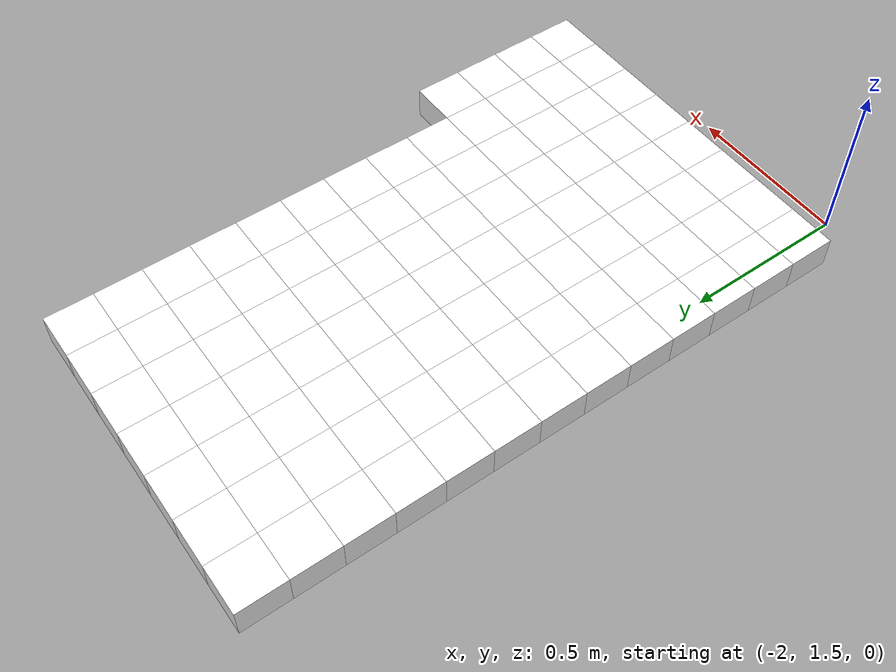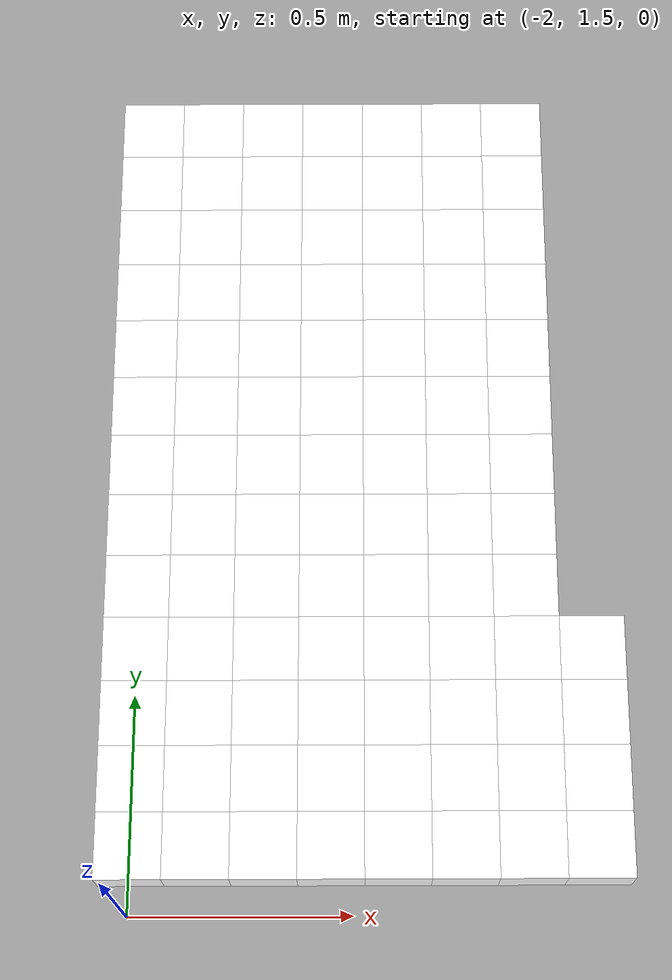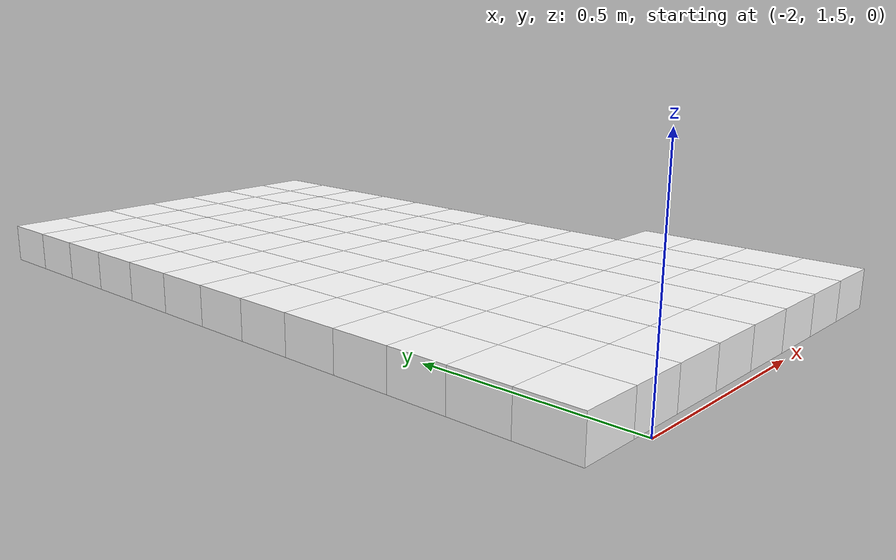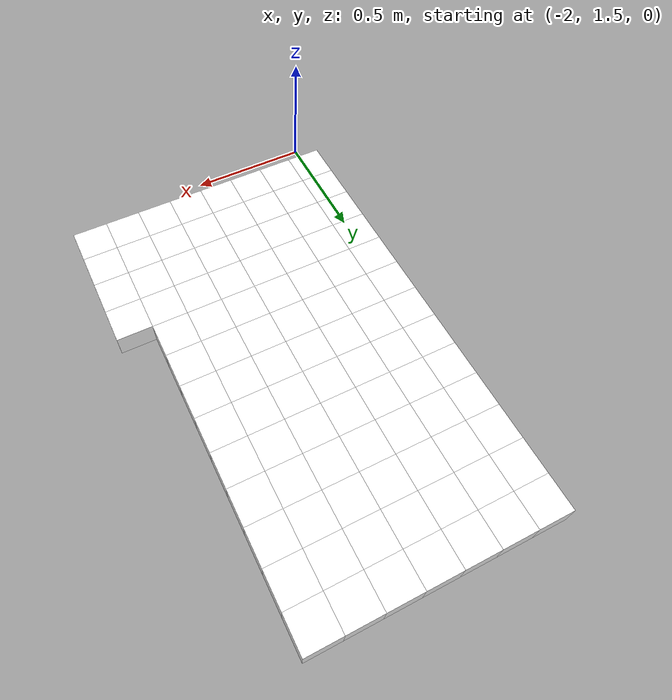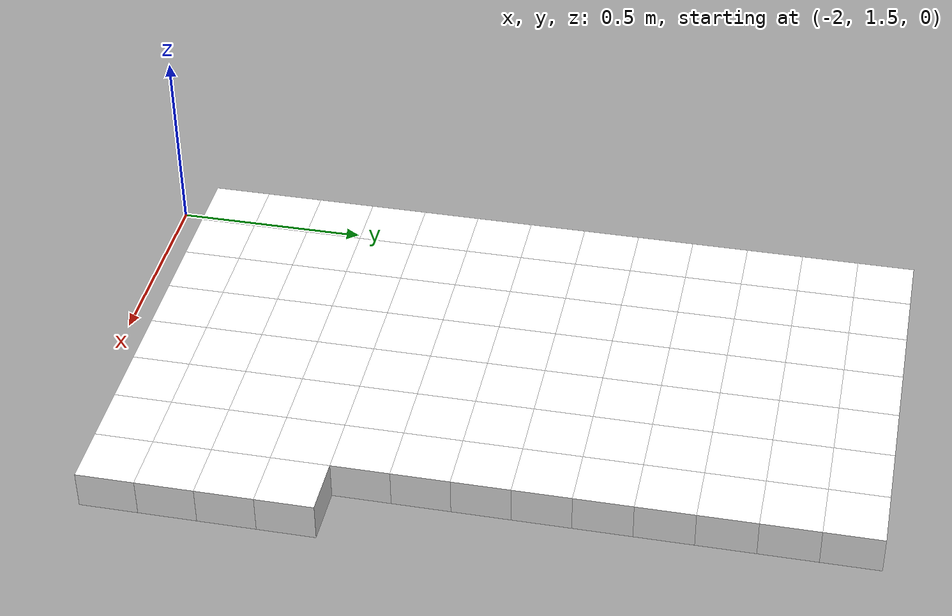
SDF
<sdf version="1.7">
 <world name="default">
  <include><uri>model://sun</uri></include>
  <model name="static_environment">
   <static>true</static>
   <link name="region_140">
    <pose>-2.0 1.65 0.0 0.0 0.0 0.0</pose>
    <collision name="region_140_collision">
     <geometry><box><size>0.15 0.15 0.1</size></box></geometry>
     <surface><friction><ode><mu>1.0</mu><mu2>1.0</mu2></ode></friction></surface>
    </collision>
    <visual name="region_140_visual">
     <geometry><box><size>0.15 0.15 0.1</size></box></geometry>
     <material><ambient>1.0 1.0 1.0 1.0</ambient><diffuse>1.0 1.0 1.0 1.0</diffuse></material>
    </visual>
   </link>
   <link name="region_141">
    <pose>-1.85 1.65 0.0 0.0 0.0 0.0</pose>
    <collision name="region_141_collision">
     <geometry><box><size>0.15 0.15 0.1</size></box></geometry>
     <surface><friction><ode><mu>1.0</mu><mu2>1.0</mu2></ode></friction></surface>
    </collision>
    <visual name="region_141_visual">
     <geometry><box><size>0.15 0.15 0.1</size></box></geometry>
     <material><ambient>1.0 1.0 1.0 1.0</ambient><diffuse>1.0 1.0 1.0 1.0</diffuse></material>
    </visual>
   </link>
   <link name="region_142">
    <pose>-1.7 1.65 0.0 0.0 0.0 0.0</pose>
    <collision name="region_142_collision">
     <geometry><box><size>0.15 0.15 0.1</size></box></geometry>
     <surface><friction><ode><mu>1.0</mu><mu2>1.0</mu2></ode></friction></surface>
    </collision>
    <visual name="region_142_visual">
     <geometry><box><size>0.15 0.15 0.1</size></box></geometry>
     <material><ambient>1.0 1.0 1.0 1.0</ambient><diffuse>1.0 1.0 1.0 1.0</diffuse></material>
    </visual>
   </link>
   <link name="region_143">
    <pose>-1.55 1.65 0.0 0.0 0.0 0.0</pose>
    <collision name="region_143_collision">
     <geometry><box><size>0.15 0.15 0.1</size></box></geometry>
     <surface><friction><ode><mu>1.0</mu><mu2>1.0</mu2></ode></friction></surface>
    </collision>
    <visual name="region_143_visual">
     <geometry><box><size>0.15 0.15 0.1</size></box></geometry>
     <material><ambient>1.0 1.0 1.0 1.0</ambient><diffuse>1.0 1.0 1.0 1.0</diffuse></material>
    </visual>
   </link>
   <link name="region_144">
    <pose>-1.4 1.65 0.0 0.0 0.0 0.0</pose>
    <collision name="region_144_collision">
     <geometry><box><size>0.15 0.15 0.1</size></box></geometry>
     <surface><friction><ode><mu>1.0</mu><mu2>1.0</mu2></ode></friction></surface>
    </collision>
    <visual name="region_144_visual">
     <geometry><box><size>0.15 0.15 0.1</size></box></geometry>
     <material><ambient>1.0 1.0 1.0 1.0</ambient><diffuse>1.0 1.0 1.0 1.0</diffuse></material>
    </visual>
   </link>
   <link name="region_145">
    <pose>-1.25 1.65 0.0 0.0 0.0 0.0</pose>
    <collision name="region_145_collision">
     <geometry><box><size>0.15 0.15 0.1</size></box></geometry>
     <surface><friction><ode><mu>1.0</mu><mu2>1.0</mu2></ode></friction></surface>
    </collision>
    <visual name="region_145_visual">
     <geometry><box><size>0.15 0.15 0.1</size></box></geometry>
     <material><ambient>1.0 1.0 1.0 1.0</ambient><diffuse>1.0 1.0 1.0 1.0</diffuse></material>
    </visual>
   </link>
   <link name="region_146">
    <pose>-1.1 1.65 0.0 0.0 0.0 0.0</pose>
    <collision name="region_146_collision">
     <geometry><box><size>0.15 0.15 0.1</size></box></geometry>
     <surface><friction><ode><mu>1.0</mu><mu2>1.0</mu2></ode></friction></surface>
    </collision>
    <visual name="region_146_visual">
     <geometry><box><size>0.15 0.15 0.1</size></box></geometry>
     <material><ambient>1.0 1.0 1.0 1.0</ambient><diffuse>1.0 1.0 1.0 1.0</diffuse></material>
    </visual>
   </link>
   <link name="region_147">
    <pose>-0.95 1.65 0.0 0.0 0.0 0.0</pose>
    <collision name="region_147_collision">
     <geometry><box><size>0.15 0.15 0.1</size></box></geometry>
     <surface><friction><ode><mu>1.0</mu><mu2>1.0</mu2></ode></friction></surface>
    </collision>
    <visual name="region_147_visual">
     <geometry><box><size>0.15 0.15 0.1</size></box></geometry>
     <material><ambient>1.0 1.0 1.0 1.0</ambient><diffuse>1.0 1.0 1.0 1.0</diffuse></material>
    </visual>
   </link>
   <link name="region_160">
    <pose>-2.0 1.7999999999999998 0.0 0.0 0.0 0.0</pose>
    <collision name="region_160_collision">
     <geometry><box><size>0.15 0.15 0.1</size></box></geometry>
     <surface><friction><ode><mu>1.0</mu><mu2>1.0</mu2></ode></friction></surface>
    </collision>
    <visual name="region_160_visual">
     <geometry><box><size>0.15 0.15 0.1</size></box></geometry>
     <material><ambient>1.0 1.0 1.0 1.0</ambient><diffuse>1.0 1.0 1.0 1.0</diffuse></material>
    </visual>
   </link>
   <link name="region_161">
    <pose>-1.85 1.7999999999999998 0.0 0.0 0.0 0.0</pose>
    <collision name="region_161_collision">
     <geometry><box><size>0.15 0.15 0.1</size></box></geometry>
     <surface><friction><ode><mu>1.0</mu><mu2>1.0</mu2></ode></friction></surface>
    </collision>
    <visual name="region_161_visual">
     <geometry><box><size>0.15 0.15 0.1</size></box></geometry>
     <material><ambient>1.0 1.0 1.0 1.0</ambient><diffuse>1.0 1.0 1.0 1.0</diffuse></material>
    </visual>
   </link>
   <link name="region_162">
    <pose>-1.7 1.7999999999999998 0.0 0.0 0.0 0.0</pose>
    <collision name="region_162_collision">
     <geometry><box><size>0.15 0.15 0.1</size></box></geometry>
     <surface><friction><ode><mu>1.0</mu><mu2>1.0</mu2></ode></friction></surface>
    </collision>
    <visual name="region_162_visual">
     <geometry><box><size>0.15 0.15 0.1</size></box></geometry>
     <material><ambient>1.0 1.0 1.0 1.0</ambient><diffuse>1.0 1.0 1.0 1.0</diffuse></material>
    </visual>
   </link>
   <link name="region_163">
    <pose>-1.55 1.7999999999999998 0.0 0.0 0.0 0.0</pose>
    <collision name="region_163_collision">
     <geometry><box><size>0.15 0.15 0.1</size></box></geometry>
     <surface><friction><ode><mu>1.0</mu><mu2>1.0</mu2></ode></friction></surface>
    </collision>
    <visual name="region_163_visual">
     <geometry><box><size>0.15 0.15 0.1</size></box></geometry>
     <material><ambient>1.0 1.0 1.0 1.0</ambient><diffuse>1.0 1.0 1.0 1.0</diffuse></material>
    </visual>
   </link>
   <link name="region_164">
    <pose>-1.4 1.7999999999999998 0.0 0.0 0.0 0.0</pose>
    <collision name="region_164_collision">
     <geometry><box><size>0.15 0.15 0.1</size></box></geometry>
     <surface><friction><ode><mu>1.0</mu><mu2>1.0</mu2></ode></friction></surface>
    </collision>
    <visual name="region_164_visual">
     <geometry><box><size>0.15 0.15 0.1</size></box></geometry>
     <material><ambient>1.0 1.0 1.0 1.0</ambient><diffuse>1.0 1.0 1.0 1.0</diffuse></material>
    </visual>
   </link>
   <link name="region_165">
    <pose>-1.25 1.7999999999999998 0.0 0.0 0.0 0.0</pose>
    <collision name="region_165_collision">
     <geometry><box><size>0.15 0.15 0.1</size></box></geometry>
     <surface><friction><ode><mu>1.0</mu><mu2>1.0</mu2></ode></friction></surface>
    </collision>
    <visual name="region_165_visual">
     <geometry><box><size>0.15 0.15 0.1</size></box></geometry>
     <material><ambient>1.0 1.0 1.0 1.0</ambient><diffuse>1.0 1.0 1.0 1.0</diffuse></material>
    </visual>
   </link>
   <link name="region_166">
    <pose>-1.1 1.7999999999999998 0.0 0.0 0.0 0.0</pose>
    <collision name="region_166_collision">
     <geometry><box><size>0.15 0.15 0.1</size></box></geometry>
     <surface><friction><ode><mu>1.0</mu><mu2>1.0</mu2></ode></friction></surface>
    </collision>
    <visual name="region_166_visual">
     <geometry><box><size>0.15 0.15 0.1</size></box></geometry>
     <material><ambient>1.0 1.0 1.0 1.0</ambient><diffuse>1.0 1.0 1.0 1.0</diffuse></material>
    </visual>
   </link>
   <link name="region_167">
    <pose>-0.95 1.7999999999999998 0.0 0.0 0.0 0.0</pose>
    <collision name="region_167_collision">
     <geometry><box><size>0.15 0.15 0.1</size></box></geometry>
     <surface><friction><ode><mu>1.0</mu><mu2>1.0</mu2></ode></friction></surface>
    </collision>
    <visual name="region_167_visual">
     <geometry><box><size>0.15 0.15 0.1</size></box></geometry>
     <material><ambient>1.0 1.0 1.0 1.0</ambient><diffuse>1.0 1.0 1.0 1.0</diffuse></material>
    </visual>
   </link>
   <link name="region_180">
    <pose>-2.0 1.9499999999999997 0.0 0.0 0.0 0.0</pose>
    <collision name="region_180_collision">
     <geometry><box><size>0.15 0.15 0.1</size></box></geometry>
     <surface><friction><ode><mu>1.0</mu><mu2>1.0</mu2></ode></friction></surface>
    </collision>
    <visual name="region_180_visual">
     <geometry><box><size>0.15 0.15 0.1</size></box></geometry>
     <material><ambient>1.0 1.0 1.0 1.0</ambient><diffuse>1.0 1.0 1.0 1.0</diffuse></material>
    </visual>
   </link>
   <link name="region_181">
    <pose>-1.85 1.9499999999999997 0.0 0.0 0.0 0.0</pose>
    <collision name="region_181_collision">
     <geometry><box><size>0.15 0.15 0.1</size></box></geometry>
     <surface><friction><ode><mu>1.0</mu><mu2>1.0</mu2></ode></friction></surface>
    </collision>
    <visual name="region_181_visual">
     <geometry><box><size>0.15 0.15 0.1</size></box></geometry>
     <material><ambient>1.0 1.0 1.0 1.0</ambient><diffuse>1.0 1.0 1.0 1.0</diffuse></material>
    </visual>
   </link>
   <link name="region_182">
    <pose>-1.7 1.9499999999999997 0.0 0.0 0.0 0.0</pose>
    <collision name="region_182_collision">
     <geometry><box><size>0.15 0.15 0.1</size></box></geometry>
     <surface><friction><ode><mu>1.0</mu><mu2>1.0</mu2></ode></friction></surface>
    </collision>
    <visual name="region_182_visual">
     <geometry><box><size>0.15 0.15 0.1</size></box></geometry>
     <material><ambient>1.0 1.0 1.0 1.0</ambient><diffuse>1.0 1.0 1.0 1.0</diffuse></material>
    </visual>
   </link>
   <link name="region_183">
    <pose>-1.55 1.9499999999999997 0.0 0.0 0.0 0.0</pose>
    <collision name="region_183_collision">
     <geometry><box><size>0.15 0.15 0.1</size></box></geometry>
     <surface><friction><ode><mu>1.0</mu><mu2>1.0</mu2></ode></friction></surface>
    </collision>
    <visual name="region_183_visual">
     <geometry><box><size>0.15 0.15 0.1</size></box></geometry>
     <material><ambient>1.0 1.0 1.0 1.0</ambient><diffuse>1.0 1.0 1.0 1.0</diffuse></material>
    </visual>
   </link>
   <link name="region_184">
    <pose>-1.4 1.9499999999999997 0.0 0.0 0.0 0.0</pose>
    <collision name="region_184_collision">
     <geometry><box><size>0.15 0.15 0.1</size></box></geometry>
     <surface><friction><ode><mu>1.0</mu><mu2>1.0</mu2></ode></friction></surface>
    </collision>
    <visual name="region_184_visual">
     <geometry><box><size>0.15 0.15 0.1</size></box></geometry>
     <material><ambient>1.0 1.0 1.0 1.0</ambient><diffuse>1.0 1.0 1.0 1.0</diffuse></material>
    </visual>
   </link>
   <link name="region_185">
    <pose>-1.25 1.9499999999999997 0.0 0.0 0.0 0.0</pose>
    <collision name="region_185_collision">
     <geometry><box><size>0.15 0.15 0.1</size></box></geometry>
     <surface><friction><ode><mu>1.0</mu><mu2>1.0</mu2></ode></friction></surface>
    </collision>
    <visual name="region_185_visual">
     <geometry><box><size>0.15 0.15 0.1</size></box></geometry>
     <material><ambient>1.0 1.0 1.0 1.0</ambient><diffuse>1.0 1.0 1.0 1.0</diffuse></material>
    </visual>
   </link>
   <link name="region_186">
    <pose>-1.1 1.9499999999999997 0.0 0.0 0.0 0.0</pose>
    <collision name="region_186_collision">
     <geometry><box><size>0.15 0.15 0.1</size></box></geometry>
     <surface><friction><ode><mu>1.0</mu><mu2>1.0</mu2></ode></friction></surface>
    </collision>
    <visual name="region_186_visual">
     <geometry><box><size>0.15 0.15 0.1</size></box></geometry>
     <material><ambient>1.0 1.0 1.0 1.0</ambient><diffuse>1.0 1.0 1.0 1.0</diffuse></material>
    </visual>
   </link>
   <link name="region_187">
    <pose>-0.95 1.9499999999999997 0.0 0.0 0.0 0.0</pose>
    <collision name="region_187_collision">
     <geometry><box><size>0.15 0.15 0.1</size></box></geometry>
     <surface><friction><ode><mu>1.0</mu><mu2>1.0</mu2></ode></friction></surface>
    </collision>
    <visual name="region_187_visual">
     <geometry><box><size>0.15 0.15 0.1</size></box></geometry>
     <material><ambient>1.0 1.0 1.0 1.0</ambient><diffuse>1.0 1.0 1.0 1.0</diffuse></material>
    </visual>
   </link>
   <link name="region_200">
    <pose>-2.0 2.0999999999999996 0.0 0.0 0.0 0.0</pose>
    <collision name="region_200_collision">
     <geometry><box><size>0.15 0.15 0.1</size></box></geometry>
     <surface><friction><ode><mu>1.0</mu><mu2>1.0</mu2></ode></friction></surface>
    </collision>
    <visual name="region_200_visual">
     <geometry><box><size>0.15 0.15 0.1</size></box></geometry>
     <material><ambient>1.0 1.0 1.0 1.0</ambient><diffuse>1.0 1.0 1.0 1.0</diffuse></material>
    </visual>
   </link>
   <link name="region_201">
    <pose>-1.85 2.0999999999999996 0.0 0.0 0.0 0.0</pose>
    <collision name="region_201_collision">
     <geometry><box><size>0.15 0.15 0.1</size></box></geometry>
     <surface><friction><ode><mu>1.0</mu><mu2>1.0</mu2></ode></friction></surface>
    </collision>
    <visual name="region_201_visual">
     <geometry><box><size>0.15 0.15 0.1</size></box></geometry>
     <material><ambient>1.0 1.0 1.0 1.0</ambient><diffuse>1.0 1.0 1.0 1.0</diffuse></material>
    </visual>
   </link>
   <link name="region_202">
    <pose>-1.7 2.0999999999999996 0.0 0.0 0.0 0.0</pose>
    <collision name="region_202_collision">
     <geometry><box><size>0.15 0.15 0.1</size></box></geometry>
     <surface><friction><ode><mu>1.0</mu><mu2>1.0</mu2></ode></friction></surface>
    </collision>
    <visual name="region_202_visual">
     <geometry><box><size>0.15 0.15 0.1</size></box></geometry>
     <material><ambient>1.0 1.0 1.0 1.0</ambient><diffuse>1.0 1.0 1.0 1.0</diffuse></material>
    </visual>
   </link>
   <link name="region_203">
    <pose>-1.55 2.0999999999999996 0.0 0.0 0.0 0.0</pose>
    <collision name="region_203_collision">
     <geometry><box><size>0.15 0.15 0.1</size></box></geometry>
     <surface><friction><ode><mu>1.0</mu><mu2>1.0</mu2></ode></friction></surface>
    </collision>
    <visual name="region_203_visual">
     <geometry><box><size>0.15 0.15 0.1</size></box></geometry>
     <material><ambient>1.0 1.0 1.0 1.0</ambient><diffuse>1.0 1.0 1.0 1.0</diffuse></material>
    </visual>
   </link>
   <link name="region_204">
    <pose>-1.4 2.0999999999999996 0.0 0.0 0.0 0.0</pose>
    <collision name="region_204_collision">
     <geometry><box><size>0.15 0.15 0.1</size></box></geometry>
     <surface><friction><ode><mu>1.0</mu><mu2>1.0</mu2></ode></friction></surface>
    </collision>
    <visual name="region_204_visual">
     <geometry><box><size>0.15 0.15 0.1</size></box></geometry>
     <material><ambient>1.0 1.0 1.0 1.0</ambient><diffuse>1.0 1.0 1.0 1.0</diffuse></material>
    </visual>
   </link>
   <link name="region_205">
    <pose>-1.25 2.0999999999999996 0.0 0.0 0.0 0.0</pose>
    <collision name="region_205_collision">
     <geometry><box><size>0.15 0.15 0.1</size></box></geometry>
     <surface><friction><ode><mu>1.0</mu><mu2>1.0</mu2></ode></friction></surface>
    </collision>
    <visual name="region_205_visual">
     <geometry><box><size>0.15 0.15 0.1</size></box></geometry>
     <material><ambient>1.0 1.0 1.0 1.0</ambient><diffuse>1.0 1.0 1.0 1.0</diffuse></material>
    </visual>
   </link>
   <link name="region_206">
    <pose>-1.1 2.0999999999999996 0.0 0.0 0.0 0.0</pose>
    <collision name="region_206_collision">
     <geometry><box><size>0.15 0.15 0.1</size></box></geometry>
     <surface><friction><ode><mu>1.0</mu><mu2>1.0</mu2></ode></friction></surface>
    </collision>
    <visual name="region_206_visual">
     <geometry><box><size>0.15 0.15 0.1</size></box></geometry>
     <material><ambient>1.0 1.0 1.0 1.0</ambient><diffuse>1.0 1.0 1.0 1.0</diffuse></material>
    </visual>
   </link>
   <link name="region_207">
    <pose>-0.95 2.0999999999999996 0.0 0.0 0.0 0.0</pose>
    <collision name="region_207_collision">
     <geometry><box><size>0.15 0.15 0.1</size></box></geometry>
     <surface><friction><ode><mu>1.0</mu><mu2>1.0</mu2></ode></friction></surface>
    </collision>
    <visual name="region_207_visual">
     <geometry><box><size>0.15 0.15 0.1</size></box></geometry>
     <material><ambient>1.0 1.0 1.0 1.0</ambient><diffuse>1.0 1.0 1.0 1.0</diffuse></material>
    </visual>
   </link>
   <link name="region_220">
    <pose>-2.0 2.2499999999999996 0.0 0.0 0.0 0.0</pose>
    <collision name="region_220_collision">
     <geometry><box><size>0.15 0.15 0.1</size></box></geometry>
     <surface><friction><ode><mu>1.0</mu><mu2>1.0</mu2></ode></friction></surface>
    </collision>
    <visual name="region_220_visual">
     <geometry><box><size>0.15 0.15 0.1</size></box></geometry>
     <material><ambient>1.0 1.0 1.0 1.0</ambient><diffuse>1.0 1.0 1.0 1.0</diffuse></material>
    </visual>
   </link>
   <link name="region_221">
    <pose>-1.85 2.2499999999999996 0.0 0.0 0.0 0.0</pose>
    <collision name="region_221_collision">
     <geometry><box><size>0.15 0.15 0.1</size></box></geometry>
     <surface><friction><ode><mu>1.0</mu><mu2>1.0</mu2></ode></friction></surface>
    </collision>
    <visual name="region_221_visual">
     <geometry><box><size>0.15 0.15 0.1</size></box></geometry>
     <material><ambient>1.0 1.0 1.0 1.0</ambient><diffuse>1.0 1.0 1.0 1.0</diffuse></material>
    </visual>
   </link>
   <link name="region_222">
    <pose>-1.7 2.2499999999999996 0.0 0.0 0.0 0.0</pose>
    <collision name="region_222_collision">
     <geometry><box><size>0.15 0.15 0.1</size></box></geometry>
     <surface><friction><ode><mu>1.0</mu><mu2>1.0</mu2></ode></friction></surface>
    </collision>
    <visual name="region_222_visual">
     <geometry><box><size>0.15 0.15 0.1</size></box></geometry>
     <material><ambient>1.0 1.0 1.0 1.0</ambient><diffuse>1.0 1.0 1.0 1.0</diffuse></material>
    </visual>
   </link>
   <link name="region_223">
    <pose>-1.55 2.2499999999999996 0.0 0.0 0.0 0.0</pose>
    <collision name="region_223_collision">
     <geometry><box><size>0.15 0.15 0.1</size></box></geometry>
     <surface><friction><ode><mu>1.0</mu><mu2>1.0</mu2></ode></friction></surface>
    </collision>
    <visual name="region_223_visual">
     <geometry><box><size>0.15 0.15 0.1</size></box></geometry>
     <material><ambient>1.0 1.0 1.0 1.0</ambient><diffuse>1.0 1.0 1.0 1.0</diffuse></material>
    </visual>
   </link>
   <link name="region_224">
    <pose>-1.4 2.2499999999999996 0.0 0.0 0.0 0.0</pose>
    <collision name="region_224_collision">
     <geometry><box><size>0.15 0.15 0.1</size></box></geometry>
     <surface><friction><ode><mu>1.0</mu><mu2>1.0</mu2></ode></friction></surface>
    </collision>
    <visual name="region_224_visual">
     <geometry><box><size>0.15 0.15 0.1</size></box></geometry>
     <material><ambient>1.0 1.0 1.0 1.0</ambient><diffuse>1.0 1.0 1.0 1.0</diffuse></material>
    </visual>
   </link>
   <link name="region_225">
    <pose>-1.25 2.2499999999999996 0.0 0.0 0.0 0.0</pose>
    <collision name="region_225_collision">
     <geometry><box><size>0.15 0.15 0.1</size></box></geometry>
     <surface><friction><ode><mu>1.0</mu><mu2>1.0</mu2></ode></friction></surface>
    </collision>
    <visual name="region_225_visual">
     <geometry><box><size>0.15 0.15 0.1</size></box></geometry>
     <material><ambient>1.0 1.0 1.0 1.0</ambient><diffuse>1.0 1.0 1.0 1.0</diffuse></material>
    </visual>
   </link>
   <link name="region_226">
    <pose>-1.1 2.2499999999999996 0.0 0.0 0.0 0.0</pose>
    <collision name="region_226_collision">
     <geometry><box><size>0.15 0.15 0.1</size></box></geometry>
     <surface><friction><ode><mu>1.0</mu><mu2>1.0</mu2></ode></friction></surface>
    </collision>
    <visual name="region_226_visual">
     <geometry><box><size>0.15 0.15 0.1</size></box></geometry>
     <material><ambient>1.0 1.0 1.0 1.0</ambient><diffuse>1.0 1.0 1.0 1.0</diffuse></material>
    </visual>
   </link>
   <link name="region_240">
    <pose>-2.0 2.3999999999999995 0.0 0.0 0.0 0.0</pose>
    <collision name="region_240_collision">
     <geometry><box><size>0.15 0.15 0.1</size></box></geometry>
     <surface><friction><ode><mu>1.0</mu><mu2>1.0</mu2></ode></friction></surface>
    </collision>
    <visual name="region_240_visual">
     <geometry><box><size>0.15 0.15 0.1</size></box></geometry>
     <material><ambient>1.0 1.0 1.0 1.0</ambient><diffuse>1.0 1.0 1.0 1.0</diffuse></material>
    </visual>
   </link>
   <link name="region_241">
    <pose>-1.85 2.3999999999999995 0.0 0.0 0.0 0.0</pose>
    <collision name="region_241_collision">
     <geometry><box><size>0.15 0.15 0.1</size></box></geometry>
     <surface><friction><ode><mu>1.0</mu><mu2>1.0</mu2></ode></friction></surface>
    </collision>
    <visual name="region_241_visual">
     <geometry><box><size>0.15 0.15 0.1</size></box></geometry>
     <material><ambient>1.0 1.0 1.0 1.0</ambient><diffuse>1.0 1.0 1.0 1.0</diffuse></material>
    </visual>
   </link>
   <link name="region_242">
    <pose>-1.7 2.3999999999999995 0.0 0.0 0.0 0.0</pose>
    <collision name="region_242_collision">
     <geometry><box><size>0.15 0.15 0.1</size></box></geometry>
     <surface><friction><ode><mu>1.0</mu><mu2>1.0</mu2></ode></friction></surface>
    </collision>
    <visual name="region_242_visual">
     <geometry><box><size>0.15 0.15 0.1</size></box></geometry>
     <material><ambient>1.0 1.0 1.0 1.0</ambient><diffuse>1.0 1.0 1.0 1.0</diffuse></material>
    </visual>
   </link>
   <link name="region_243">
    <pose>-1.55 2.3999999999999995 0.0 0.0 0.0 0.0</pose>
    <collision name="region_243_collision">
     <geometry><box><size>0.15 0.15 0.1</size></box></geometry>
     <surface><friction><ode><mu>1.0</mu><mu2>1.0</mu2></ode></friction></surface>
    </collision>
    <visual name="region_243_visual">
     <geometry><box><size>0.15 0.15 0.1</size></box></geometry>
     <material><ambient>1.0 1.0 1.0 1.0</ambient><diffuse>1.0 1.0 1.0 1.0</diffuse></material>
    </visual>
   </link>
   <link name="region_244">
    <pose>-1.4 2.3999999999999995 0.0 0.0 0.0 0.0</pose>
    <collision name="region_244_collision">
     <geometry><box><size>0.15 0.15 0.1</size></box></geometry>
     <surface><friction><ode><mu>1.0</mu><mu2>1.0</mu2></ode></friction></surface>
    </collision>
    <visual name="region_244_visual">
     <geometry><box><size>0.15 0.15 0.1</size></box></geometry>
     <material><ambient>1.0 1.0 1.0 1.0</ambient><diffuse>1.0 1.0 1.0 1.0</diffuse></material>
    </visual>
   </link>
   <link name="region_245">
    <pose>-1.25 2.3999999999999995 0.0 0.0 0.0 0.0</pose>
    <collision name="region_245_collision">
     <geometry><box><size>0.15 0.15 0.1</size></box></geometry>
     <surface><friction><ode><mu>1.0</mu><mu2>1.0</mu2></ode></friction></surface>
    </collision>
    <visual name="region_245_visual">
     <geometry><box><size>0.15 0.15 0.1</size></box></geometry>
     <material><ambient>1.0 1.0 1.0 1.0</ambient><diffuse>1.0 1.0 1.0 1.0</diffuse></material>
    </visual>
   </link>
   <link name="region_246">
    <pose>-1.1 2.3999999999999995 0.0 0.0 0.0 0.0</pose>
    <collision name="region_246_collision">
     <geometry><box><size>0.15 0.15 0.1</size></box></geometry>
     <surface><friction><ode><mu>1.0</mu><mu2>1.0</mu2></ode></friction></surface>
    </collision>
    <visual name="region_246_visual">
     <geometry><box><size>0.15 0.15 0.1</size></box></geometry>
     <material><ambient>1.0 1.0 1.0 1.0</ambient><diffuse>1.0 1.0 1.0 1.0</diffuse></material>
    </visual>
   </link>
   <link name="region_260">
    <pose>-2.0 2.5499999999999994 0.0 0.0 0.0 0.0</pose>
    <collision name="region_260_collision">
     <geometry><box><size>0.15 0.15 0.1</size></box></geometry>
     <surface><friction><ode><mu>1.0</mu><mu2>1.0</mu2></ode></friction></surface>
    </collision>
    <visual name="region_260_visual">
     <geometry><box><size>0.15 0.15 0.1</size></box></geometry>
     <material><ambient>1.0 1.0 1.0 1.0</ambient><diffuse>1.0 1.0 1.0 1.0</diffuse></material>
    </visual>
   </link>
   <link name="region_261">
    <pose>-1.85 2.5499999999999994 0.0 0.0 0.0 0.0</pose>
    <collision name="region_261_collision">
     <geometry><box><size>0.15 0.15 0.1</size></box></geometry>
     <surface><friction><ode><mu>1.0</mu><mu2>1.0</mu2></ode></friction></surface>
    </collision>
    <visual name="region_261_visual">
     <geometry><box><size>0.15 0.15 0.1</size></box></geometry>
     <material><ambient>1.0 1.0 1.0 1.0</ambient><diffuse>1.0 1.0 1.0 1.0</diffuse></material>
    </visual>
   </link>
   <link name="region_262">
    <pose>-1.7 2.5499999999999994 0.0 0.0 0.0 0.0</pose>
    <collision name="region_262_collision">
     <geometry><box><size>0.15 0.15 0.1</size></box></geometry>
     <surface><friction><ode><mu>1.0</mu><mu2>1.0</mu2></ode></friction></surface>
    </collision>
    <visual name="region_262_visual">
     <geometry><box><size>0.15 0.15 0.1</size></box></geometry>
     <material><ambient>1.0 1.0 1.0 1.0</ambient><diffuse>1.0 1.0 1.0 1.0</diffuse></material>
    </visual>
   </link>
   <link name="region_263">
    <pose>-1.55 2.5499999999999994 0.0 0.0 0.0 0.0</pose>
    <collision name="region_263_collision">
     <geometry><box><size>0.15 0.15 0.1</size></box></geometry>
     <surface><friction><ode><mu>1.0</mu><mu2>1.0</mu2></ode></friction></surface>
    </collision>
    <visual name="region_263_visual">
     <geometry><box><size>0.15 0.15 0.1</size></box></geometry>
     <material><ambient>1.0 1.0 1.0 1.0</ambient><diffuse>1.0 1.0 1.0 1.0</diffuse></material>
    </visual>
   </link>
   <link name="region_264">
    <pose>-1.4 2.5499999999999994 0.0 0.0 0.0 0.0</pose>
    <collision name="region_264_collision">
     <geometry><box><size>0.15 0.15 0.1</size></box></geometry>
     <surface><friction><ode><mu>1.0</mu><mu2>1.0</mu2></ode></friction></surface>
    </collision>
    <visual name="region_264_visual">
     <geometry><box><size>0.15 0.15 0.1</size></box></geometry>
     <material><ambient>1.0 1.0 1.0 1.0</ambient><diffuse>1.0 1.0 1.0 1.0</diffuse></material>
    </visual>
   </link>
   <link name="region_265">
    <pose>-1.25 2.5499999999999994 0.0 0.0 0.0 0.0</pose>
    <collision name="region_265_collision">
     <geometry><box><size>0.15 0.15 0.1</size></box></geometry>
     <surface><friction><ode><mu>1.0</mu><mu2>1.0</mu2></ode></friction></surface>
    </collision>
    <visual name="region_265_visual">
     <geometry><box><size>0.15 0.15 0.1</size></box></geometry>
     <material><ambient>1.0 1.0 1.0 1.0</ambient><diffuse>1.0 1.0 1.0 1.0</diffuse></material>
    </visual>
   </link>
   <link name="region_266">
    <pose>-1.1 2.5499999999999994 0.0 0.0 0.0 0.0</pose>
    <collision name="region_266_collision">
     <geometry><box><size>0.15 0.15 0.1</size></box></geometry>
     <surface><friction><ode><mu>1.0</mu><mu2>1.0</mu2></ode></friction></surface>
    </collision>
    <visual name="region_266_visual">
     <geometry><box><size>0.15 0.15 0.1</size></box></geometry>
     <material><ambient>1.0 1.0 1.0 1.0</ambient><diffuse>1.0 1.0 1.0 1.0</diffuse></material>
    </visual>
   </link>
   <link name="region_280">
    <pose>-2.0 2.6999999999999997 0.0 0.0 0.0 0.0</pose>
    <collision name="region_280_collision">
     <geometry><box><size>0.15 0.15 0.1</size></box></geometry>
     <surface><friction><ode><mu>1.0</mu><mu2>1.0</mu2></ode></friction></surface>
    </collision>
    <visual name="region_280_visual">
     <geometry><box><size>0.15 0.15 0.1</size></box></geometry>
     <material><ambient>1.0 1.0 1.0 1.0</ambient><diffuse>1.0 1.0 1.0 1.0</diffuse></material>
    </visual>
   </link>
   <link name="region_281">
    <pose>-1.85 2.6999999999999997 0.0 0.0 0.0 0.0</pose>
    <collision name="region_281_collision">
     <geometry><box><size>0.15 0.15 0.1</size></box></geometry>
     <surface><friction><ode><mu>1.0</mu><mu2>1.0</mu2></ode></friction></surface>
    </collision>
    <visual name="region_281_visual">
     <geometry><box><size>0.15 0.15 0.1</size></box></geometry>
     <material><ambient>1.0 1.0 1.0 1.0</ambient><diffuse>1.0 1.0 1.0 1.0</diffuse></material>
    </visual>
   </link>
   <link name="region_282">
    <pose>-1.7 2.6999999999999997 0.0 0.0 0.0 0.0</pose>
    <collision name="region_282_collision">
     <geometry><box><size>0.15 0.15 0.1</size></box></geometry>
     <surface><friction><ode><mu>1.0</mu><mu2>1.0</mu2></ode></friction></surface>
    </collision>
    <visual name="region_282_visual">
     <geometry><box><size>0.15 0.15 0.1</size></box></geometry>
     <material><ambient>1.0 1.0 1.0 1.0</ambient><diffuse>1.0 1.0 1.0 1.0</diffuse></material>
    </visual>
   </link>
   <link name="region_283">
    <pose>-1.55 2.6999999999999997 0.0 0.0 0.0 0.0</pose>
    <collision name="region_283_collision">
     <geometry><box><size>0.15 0.15 0.1</size></box></geometry>
     <surface><friction><ode><mu>1.0</mu><mu2>1.0</mu2></ode></friction></surface>
    </collision>
    <visual name="region_283_visual">
     <geometry><box><size>0.15 0.15 0.1</size></box></geometry>
     <material><ambient>1.0 1.0 1.0 1.0</ambient><diffuse>1.0 1.0 1.0 1.0</diffuse></material>
    </visual>
   </link>
   <link name="region_284">
    <pose>-1.4 2.6999999999999997 0.0 0.0 0.0 0.0</pose>
    <collision name="region_284_collision">
     <geometry><box><size>0.15 0.15 0.1</size></box></geometry>
     <surface><friction><ode><mu>1.0</mu><mu2>1.0</mu2></ode></friction></surface>
    </collision>
    <visual name="region_284_visual">
     <geometry><box><size>0.15 0.15 0.1</size></box></geometry>
     <material><ambient>1.0 1.0 1.0 1.0</ambient><diffuse>1.0 1.0 1.0 1.0</diffuse></material>
    </visual>
   </link>
   <link name="region_285">
    <pose>-1.25 2.6999999999999997 0.0 0.0 0.0 0.0</pose>
    <collision name="region_285_collision">
     <geometry><box><size>0.15 0.15 0.1</size></box></geometry>
     <surface><friction><ode><mu>1.0</mu><mu2>1.0</mu2></ode></friction></surface>
    </collision>
    <visual name="region_285_visual">
     <geometry><box><size>0.15 0.15 0.1</size></box></geometry>
     <material><ambient>1.0 1.0 1.0 1.0</ambient><diffuse>1.0 1.0 1.0 1.0</diffuse></material>
    </visual>
   </link>
   <link name="region_286">
    <pose>-1.1 2.6999999999999997 0.0 0.0 0.0 0.0</pose>
    <collision name="region_286_collision">
     <geometry><box><size>0.15 0.15 0.1</size></box></geometry>
     <surface><friction><ode><mu>1.0</mu><mu2>1.0</mu2></ode></friction></surface>
    </collision>
    <visual name="region_286_visual">
     <geometry><box><size>0.15 0.15 0.1</size></box></geometry>
     <material><ambient>1.0 1.0 1.0 1.0</ambient><diffuse>1.0 1.0 1.0 1.0</diffuse></material>
    </visual>
   </link>
   <link name="region_300">
    <pose>-2.0 2.8499999999999996 0.0 0.0 0.0 0.0</pose>
    <collision name="region_300_collision">
     <geometry><box><size>0.15 0.15 0.1</size></box></geometry>
     <surface><friction><ode><mu>1.0</mu><mu2>1.0</mu2></ode></friction></surface>
    </collision>
    <visual name="region_300_visual">
     <geometry><box><size>0.15 0.15 0.1</size></box></geometry>
     <material><ambient>1.0 1.0 1.0 1.0</ambient><diffuse>1.0 1.0 1.0 1.0</diffuse></material>
    </visual>
   </link>
   <link name="region_301">
    <pose>-1.85 2.8499999999999996 0.0 0.0 0.0 0.0</pose>
    <collision name="region_301_collision">
     <geometry><box><size>0.15 0.15 0.1</size></box></geometry>
     <surface><friction><ode><mu>1.0</mu><mu2>1.0</mu2></ode></friction></surface>
    </collision>
    <visual name="region_301_visual">
     <geometry><box><size>0.15 0.15 0.1</size></box></geometry>
     <material><ambient>1.0 1.0 1.0 1.0</ambient><diffuse>1.0 1.0 1.0 1.0</diffuse></material>
    </visual>
   </link>
   <link name="region_302">
    <pose>-1.7 2.8499999999999996 0.0 0.0 0.0 0.0</pose>
    <collision name="region_302_collision">
     <geometry><box><size>0.15 0.15 0.1</size></box></geometry>
     <surface><friction><ode><mu>1.0</mu><mu2>1.0</mu2></ode></friction></surface>
    </collision>
    <visual name="region_302_visual">
     <geometry><box><size>0.15 0.15 0.1</size></box></geometry>
     <material><ambient>1.0 1.0 1.0 1.0</ambient><diffuse>1.0 1.0 1.0 1.0</diffuse></material>
    </visual>
   </link>
   <link name="region_303">
    <pose>-1.55 2.8499999999999996 0.0 0.0 0.0 0.0</pose>
    <collision name="region_303_collision">
     <geometry><box><size>0.15 0.15 0.1</size></box></geometry>
     <surface><friction><ode><mu>1.0</mu><mu2>1.0</mu2></ode></friction></surface>
    </collision>
    <visual name="region_303_visual">
     <geometry><box><size>0.15 0.15 0.1</size></box></geometry>
     <material><ambient>1.0 1.0 1.0 1.0</ambient><diffuse>1.0 1.0 1.0 1.0</diffuse></material>
    </visual>
   </link>
   <link name="region_304">
    <pose>-1.4 2.8499999999999996 0.0 0.0 0.0 0.0</pose>
    <collision name="region_304_collision">
     <geometry><box><size>0.15 0.15 0.1</size></box></geometry>
     <surface><friction><ode><mu>1.0</mu><mu2>1.0</mu2></ode></friction></surface>
    </collision>
    <visual name="region_304_visual">
     <geometry><box><size>0.15 0.15 0.1</size></box></geometry>
     <material><ambient>1.0 1.0 1.0 1.0</ambient><diffuse>1.0 1.0 1.0 1.0</diffuse></material>
    </visual>
   </link>
   <link name="region_305">
    <pose>-1.25 2.8499999999999996 0.0 0.0 0.0 0.0</pose>
    <collision name="region_305_collision">
     <geometry><box><size>0.15 0.15 0.1</size></box></geometry>
     <surface><friction><ode><mu>1.0</mu><mu2>1.0</mu2></ode></friction></surface>
    </collision>
    <visual name="region_305_visual">
     <geometry><box><size>0.15 0.15 0.1</size></box></geometry>
     <material><ambient>1.0 1.0 1.0 1.0</ambient><diffuse>1.0 1.0 1.0 1.0</diffuse></material>
    </visual>
   </link>
   <link name="region_306">
    <pose>-1.1 2.8499999999999996 0.0 0.0 0.0 0.0</pose>
    <collision name="region_306_collision">
     <geometry><box><size>0.15 0.15 0.1</size></box></geometry>
     <surface><friction><ode><mu>1.0</mu><mu2>1.0</mu2></ode></friction></surface>
    </collision>
    <visual name="region_306_visual">
     <geometry><box><size>0.15 0.15 0.1</size></box></geometry>
     <material><ambient>1.0 1.0 1.0 1.0</ambient><diffuse>1.0 1.0 1.0 1.0</diffuse></material>
    </visual>
   </link>
   <link name="region_320">
    <pose>-2.0 2.9999999999999996 0.0 0.0 0.0 0.0</pose>
    <collision name="region_320_collision">
     <geometry><box><size>0.15 0.15 0.1</size></box></geometry>
     <surface><friction><ode><mu>1.0</mu><mu2>1.0</mu2></ode></friction></surface>
    </collision>
    <visual name="region_320_visual">
     <geometry><box><size>0.15 0.15 0.1</size></box></geometry>
     <material><ambient>1.0 1.0 1.0 1.0</ambient><diffuse>1.0 1.0 1.0 1.0</diffuse></material>
    </visual>
   </link>
   <link name="region_321">
    <pose>-1.85 2.9999999999999996 0.0 0.0 0.0 0.0</pose>
    <collision name="region_321_collision">
     <geometry><box><size>0.15 0.15 0.1</size></box></geometry>
     <surface><friction><ode><mu>1.0</mu><mu2>1.0</mu2></ode></friction></surface>
    </collision>
    <visual name="region_321_visual">
     <geometry><box><size>0.15 0.15 0.1</size></box></geometry>
     <material><ambient>1.0 1.0 1.0 1.0</ambient><diffuse>1.0 1.0 1.0 1.0</diffuse></material>
    </visual>
   </link>
   <link name="region_322">
    <pose>-1.7 2.9999999999999996 0.0 0.0 0.0 0.0</pose>
    <collision name="region_322_collision">
     <geometry><box><size>0.15 0.15 0.1</size></box></geometry>
     <surface><friction><ode><mu>1.0</mu><mu2>1.0</mu2></ode></friction></surface>
    </collision>
    <visual name="region_322_visual">
     <geometry><box><size>0.15 0.15 0.1</size></box></geometry>
     <material><ambient>1.0 1.0 1.0 1.0</ambient><diffuse>1.0 1.0 1.0 1.0</diffuse></material>
    </visual>
   </link>
   <link name="region_323">
    <pose>-1.55 2.9999999999999996 0.0 0.0 0.0 0.0</pose>
    <collision name="region_323_collision">
     <geometry><box><size>0.15 0.15 0.1</size></box></geometry>
     <surface><friction><ode><mu>1.0</mu><mu2>1.0</mu2></ode></friction></surface>
    </collision>
    <visual name="region_323_visual">
     <geometry><box><size>0.15 0.15 0.1</size></box></geometry>
     <material><ambient>1.0 1.0 1.0 1.0</ambient><diffuse>1.0 1.0 1.0 1.0</diffuse></material>
    </visual>
   </link>
   <link name="region_324">
    <pose>-1.4 2.9999999999999996 0.0 0.0 0.0 0.0</pose>
    <collision name="region_324_collision">
     <geometry><box><size>0.15 0.15 0.1</size></box></geometry>
     <surface><friction><ode><mu>1.0</mu><mu2>1.0</mu2></ode></friction></surface>
    </collision>
    <visual name="region_324_visual">
     <geometry><box><size>0.15 0.15 0.1</size></box></geometry>
     <material><ambient>1.0 1.0 1.0 1.0</ambient><diffuse>1.0 1.0 1.0 1.0</diffuse></material>
    </visual>
   </link>
   <link name="region_325">
    <pose>-1.25 2.9999999999999996 0.0 0.0 0.0 0.0</pose>
    <collision name="region_325_collision">
     <geometry><box><size>0.15 0.15 0.1</size></box></geometry>
     <surface><friction><ode><mu>1.0</mu><mu2>1.0</mu2></ode></friction></surface>
    </collision>
    <visual name="region_325_visual">
     <geometry><box><size>0.15 0.15 0.1</size></box></geometry>
     <material><ambient>1.0 1.0 1.0 1.0</ambient><diffuse>1.0 1.0 1.0 1.0</diffuse></material>
    </visual>
   </link>
   <link name="region_326">
    <pose>-1.1 2.9999999999999996 0.0 0.0 0.0 0.0</pose>
    <collision name="region_326_collision">
     <geometry><box><size>0.15 0.15 0.1</size></box></geometry>
     <surface><friction><ode><mu>1.0</mu><mu2>1.0</mu2></ode></friction></surface>
    </collision>
    <visual name="region_326_visual">
     <geometry><box><size>0.15 0.15 0.1</size></box></geometry>
     <material><ambient>1.0 1.0 1.0 1.0</ambient><diffuse>1.0 1.0 1.0 1.0</diffuse></material>
    </visual>
   </link>
   <link name="region_340">
    <pose>-2.0 3.1499999999999995 0.0 0.0 0.0 0.0</pose>
    <collision name="region_340_collision">
     <geometry><box><size>0.15 0.15 0.1</size></box></geometry>
     <surface><friction><ode><mu>1.0</mu><mu2>1.0</mu2></ode></friction></surface>
    </collision>
    <visual name="region_340_visual">
     <geometry><box><size>0.15 0.15 0.1</size></box></geometry>
     <material><ambient>1.0 1.0 1.0 1.0</ambient><diffuse>1.0 1.0 1.0 1.0</diffuse></material>
    </visual>
   </link>
   <link name="region_341">
    <pose>-1.85 3.1499999999999995 0.0 0.0 0.0 0.0</pose>
    <collision name="region_341_collision">
     <geometry><box><size>0.15 0.15 0.1</size></box></geometry>
     <surface><friction><ode><mu>1.0</mu><mu2>1.0</mu2></ode></friction></surface>
    </collision>
    <visual name="region_341_visual">
     <geometry><box><size>0.15 0.15 0.1</size></box></geometry>
     <material><ambient>1.0 1.0 1.0 1.0</ambient><diffuse>1.0 1.0 1.0 1.0</diffuse></material>
    </visual>
   </link>
   <link name="region_342">
    <pose>-1.7 3.1499999999999995 0.0 0.0 0.0 0.0</pose>
    <collision name="region_342_collision">
     <geometry><box><size>0.15 0.15 0.1</size></box></geometry>
     <surface><friction><ode><mu>1.0</mu><mu2>1.0</mu2></ode></friction></surface>
    </collision>
    <visual name="region_342_visual">
     <geometry><box><size>0.15 0.15 0.1</size></box></geometry>
     <material><ambient>1.0 1.0 1.0 1.0</ambient><diffuse>1.0 1.0 1.0 1.0</diffuse></material>
    </visual>
   </link>
   <link name="region_343">
    <pose>-1.55 3.1499999999999995 0.0 0.0 0.0 0.0</pose>
    <collision name="region_343_collision">
     <geometry><box><size>0.15 0.15 0.1</size></box></geometry>
     <surface><friction><ode><mu>1.0</mu><mu2>1.0</mu2></ode></friction></surface>
    </collision>
    <visual name="region_343_visual">
     <geometry><box><size>0.15 0.15 0.1</size></box></geometry>
     <material><ambient>1.0 1.0 1.0 1.0</ambient><diffuse>1.0 1.0 1.0 1.0</diffuse></material>
    </visual>
   </link>
   <link name="region_344">
    <pose>-1.4 3.1499999999999995 0.0 0.0 0.0 0.0</pose>
    <collision name="region_344_collision">
     <geometry><box><size>0.15 0.15 0.1</size></box></geometry>
     <surface><friction><ode><mu>1.0</mu><mu2>1.0</mu2></ode></friction></surface>
    </collision>
    <visual name="region_344_visual">
     <geometry><box><size>0.15 0.15 0.1</size></box></geometry>
     <material><ambient>1.0 1.0 1.0 1.0</ambient><diffuse>1.0 1.0 1.0 1.0</diffuse></material>
    </visual>
   </link>
   <link name="region_345">
    <pose>-1.25 3.1499999999999995 0.0 0.0 0.0 0.0</pose>
    <collision name="region_345_collision">
     <geometry><box><size>0.15 0.15 0.1</size></box></geometry>
     <surface><friction><ode><mu>1.0</mu><mu2>1.0</mu2></ode></friction></surface>
    </collision>
    <visual name="region_345_visual">
     <geometry><box><size>0.15 0.15 0.1</size></box></geometry>
     <material><ambient>1.0 1.0 1.0 1.0</ambient><diffuse>1.0 1.0 1.0 1.0</diffuse></material>
    </visual>
   </link>
   <link name="region_346">
    <pose>-1.1 3.1499999999999995 0.0 0.0 0.0 0.0</pose>
    <collision name="region_346_collision">
     <geometry><box><size>0.15 0.15 0.1</size></box></geometry>
     <surface><friction><ode><mu>1.0</mu><mu2>1.0</mu2></ode></friction></surface>
    </collision>
    <visual name="region_346_visual">
     <geometry><box><size>0.15 0.15 0.1</size></box></geometry>
     <material><ambient>1.0 1.0 1.0 1.0</ambient><diffuse>1.0 1.0 1.0 1.0</diffuse></material>
    </visual>
   </link>
   <link name="region_360">
    <pose>-2.0 3.2999999999999994 0.0 0.0 0.0 0.0</pose>
    <collision name="region_360_collision">
     <geometry><box><size>0.15 0.15 0.1</size></box></geometry>
     <surface><friction><ode><mu>1.0</mu><mu2>1.0</mu2></ode></friction></surface>
    </collision>
    <visual name="region_360_visual">
     <geometry><box><size>0.15 0.15 0.1</size></box></geometry>
     <material><ambient>1.0 1.0 1.0 1.0</ambient><diffuse>1.0 1.0 1.0 1.0</diffuse></material>
    </visual>
   </link>
   <link name="region_361">
    <pose>-1.85 3.2999999999999994 0.0 0.0 0.0 0.0</pose>
    <collision name="region_361_collision">
     <geometry><box><size>0.15 0.15 0.1</size></box></geometry>
     <surface><friction><ode><mu>1.0</mu><mu2>1.0</mu2></ode></friction></surface>
    </collision>
    <visual name="region_361_visual">
     <geometry><box><size>0.15 0.15 0.1</size></box></geometry>
     <material><ambient>1.0 1.0 1.0 1.0</ambient><diffuse>1.0 1.0 1.0 1.0</diffuse></material>
    </visual>
   </link>
   <link name="region_362">
    <pose>-1.7 3.2999999999999994 0.0 0.0 0.0 0.0</pose>
    <collision name="region_362_collision">
     <geometry><box><size>0.15 0.15 0.1</size></box></geometry>
     <surface><friction><ode><mu>1.0</mu><mu2>1.0</mu2></ode></friction></surface>
    </collision>
    <visual name="region_362_visual">
     <geometry><box><size>0.15 0.15 0.1</size></box></geometry>
     <material><ambient>1.0 1.0 1.0 1.0</ambient><diffuse>1.0 1.0 1.0 1.0</diffuse></material>
    </visual>
   </link>
   <link name="region_363">
    <pose>-1.55 3.2999999999999994 0.0 0.0 0.0 0.0</pose>
    <collision name="region_363_collision">
     <geometry><box><size>0.15 0.15 0.1</size></box></geometry>
     <surface><friction><ode><mu>1.0</mu><mu2>1.0</mu2></ode></friction></surface>
    </collision>
    <visual name="region_363_visual">
     <geometry><box><size>0.15 0.15 0.1</size></box></geometry>
     <material><ambient>1.0 1.0 1.0 1.0</ambient><diffuse>1.0 1.0 1.0 1.0</diffuse></material>
    </visual>
   </link>
   <link name="region_364">
    <pose>-1.4 3.2999999999999994 0.0 0.0 0.0 0.0</pose>
    <collision name="region_364_collision">
     <geometry><box><size>0.15 0.15 0.1</size></box></geometry>
     <surface><friction><ode><mu>1.0</mu><mu2>1.0</mu2></ode></friction></surface>
    </collision>
    <visual name="region_364_visual">
     <geometry><box><size>0.15 0.15 0.1</size></box></geometry>
     <material><ambient>1.0 1.0 1.0 1.0</ambient><diffuse>1.0 1.0 1.0 1.0</diffuse></material>
    </visual>
   </link>
   <link name="region_365">
    <pose>-1.25 3.2999999999999994 0.0 0.0 0.0 0.0</pose>
    <collision name="region_365_collision">
     <geometry><box><size>0.15 0.15 0.1</size></box></geometry>
     <surface><friction><ode><mu>1.0</mu><mu2>1.0</mu2></ode></friction></surface>
    </collision>
    <visual name="region_365_visual">
     <geometry><box><size>0.15 0.15 0.1</size></box></geometry>
     <material><ambient>1.0 1.0 1.0 1.0</ambient><diffuse>1.0 1.0 1.0 1.0</diffuse></material>
    </visual>
   </link>
   <link name="region_366">
    <pose>-1.1 3.2999999999999994 0.0 0.0 0.0 0.0</pose>
    <collision name="region_366_collision">
     <geometry><box><size>0.15 0.15 0.1</size></box></geometry>
     <surface><friction><ode><mu>1.0</mu><mu2>1.0</mu2></ode></friction></surface>
    </collision>
    <visual name="region_366_visual">
     <geometry><box><size>0.15 0.15 0.1</size></box></geometry>
     <material><ambient>1.0 1.0 1.0 1.0</ambient><diffuse>1.0 1.0 1.0 1.0</diffuse></material>
    </visual>
   </link>
   <link name="region_380">
    <pose>-2.0 3.4499999999999993 0.0 0.0 0.0 0.0</pose>
    <collision name="region_380_collision">
     <geometry><box><size>0.15 0.15 0.1</size></box></geometry>
     <surface><friction><ode><mu>1.0</mu><mu2>1.0</mu2></ode></friction></surface>
    </collision>
    <visual name="region_380_visual">
     <geometry><box><size>0.15 0.15 0.1</size></box></geometry>
     <material><ambient>1.0 1.0 1.0 1.0</ambient><diffuse>1.0 1.0 1.0 1.0</diffuse></material>
    </visual>
   </link>
   <link name="region_381">
    <pose>-1.85 3.4499999999999993 0.0 0.0 0.0 0.0</pose>
    <collision name="region_381_collision">
     <geometry><box><size>0.15 0.15 0.1</size></box></geometry>
     <surface><friction><ode><mu>1.0</mu><mu2>1.0</mu2></ode></friction></surface>
    </collision>
    <visual name="region_381_visual">
     <geometry><box><size>0.15 0.15 0.1</size></box></geometry>
     <material><ambient>1.0 1.0 1.0 1.0</ambient><diffuse>1.0 1.0 1.0 1.0</diffuse></material>
    </visual>
   </link>
   <link name="region_382">
    <pose>-1.7 3.4499999999999993 0.0 0.0 0.0 0.0</pose>
    <collision name="region_382_collision">
     <geometry><box><size>0.15 0.15 0.1</size></box></geometry>
     <surface><friction><ode><mu>1.0</mu><mu2>1.0</mu2></ode></friction></surface>
    </collision>
    <visual name="region_382_visual">
     <geometry><box><size>0.15 0.15 0.1</size></box></geometry>
     <material><ambient>1.0 1.0 1.0 1.0</ambient><diffuse>1.0 1.0 1.0 1.0</diffuse></material>
    </visual>
   </link>
   <link name="region_383">
    <pose>-1.55 3.4499999999999993 0.0 0.0 0.0 0.0</pose>
    <collision name="region_383_collision">
     <geometry><box><size>0.15 0.15 0.1</size></box></geometry>
     <surface><friction><ode><mu>1.0</mu><mu2>1.0</mu2></ode></friction></surface>
    </collision>
    <visual name="region_383_visual">
     <geometry><box><size>0.15 0.15 0.1</size></box></geometry>
     <material><ambient>1.0 1.0 1.0 1.0</ambient><diffuse>1.0 1.0 1.0 1.0</diffuse></material>
    </visual>
   </link>
   <link name="region_384">
    <pose>-1.4 3.4499999999999993 0.0 0.0 0.0 0.0</pose>
    <collision name="region_384_collision">
     <geometry><box><size>0.15 0.15 0.1</size></box></geometry>
     <surface><friction><ode><mu>1.0</mu><mu2>1.0</mu2></ode></friction></surface>
    </collision>
    <visual name="region_384_visual">
     <geometry><box><size>0.15 0.15 0.1</size></box></geometry>
     <material><ambient>1.0 1.0 1.0 1.0</ambient><diffuse>1.0 1.0 1.0 1.0</diffuse></material>
    </visual>
   </link>
   <link name="region_385">
    <pose>-1.25 3.4499999999999993 0.0 0.0 0.0 0.0</pose>
    <collision name="region_385_collision">
     <geometry><box><size>0.15 0.15 0.1</size></box></geometry>
     <surface><friction><ode><mu>1.0</mu><mu2>1.0</mu2></ode></friction></surface>
    </collision>
    <visual name="region_385_visual">
     <geometry><box><size>0.15 0.15 0.1</size></box></geometry>
     <material><ambient>1.0 1.0 1.0 1.0</ambient><diffuse>1.0 1.0 1.0 1.0</diffuse></material>
    </visual>
   </link>
   <link name="region_386">
    <pose>-1.1 3.4499999999999993 0.0 0.0 0.0 0.0</pose>
    <collision name="region_386_collision">
     <geometry><box><size>0.15 0.15 0.1</size></box></geometry>
     <surface><friction><ode><mu>1.0</mu><mu2>1.0</mu2></ode></friction></surface>
    </collision>
    <visual name="region_386_visual">
     <geometry><box><size>0.15 0.15 0.1</size></box></geometry>
     <material><ambient>1.0 1.0 1.0 1.0</ambient><diffuse>1.0 1.0 1.0 1.0</diffuse></material>
    </visual>
   </link>
  </model>
 </world>
</sdf>
